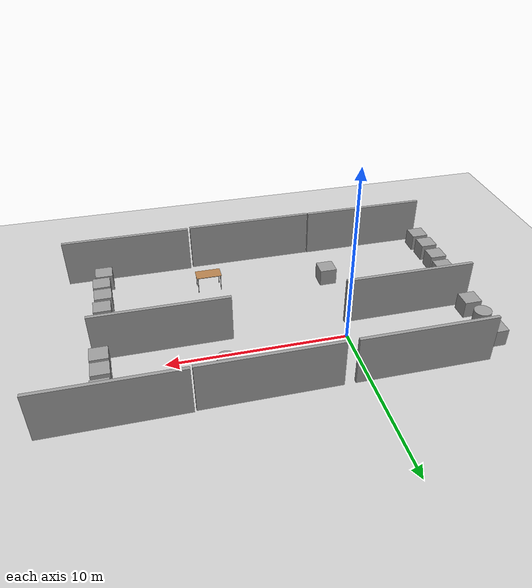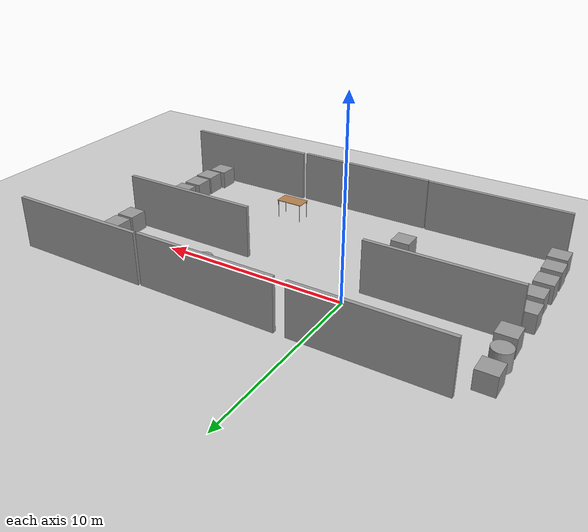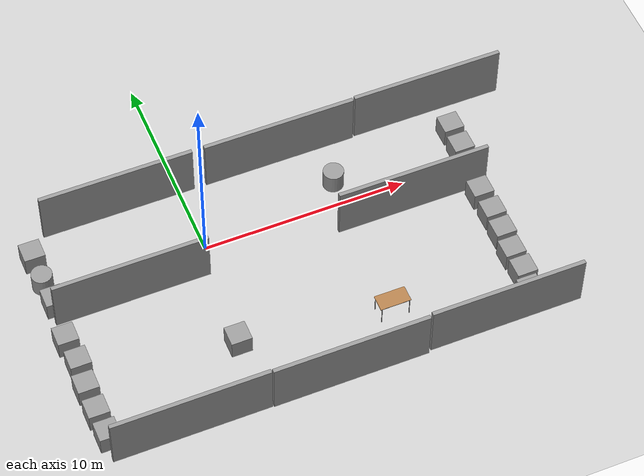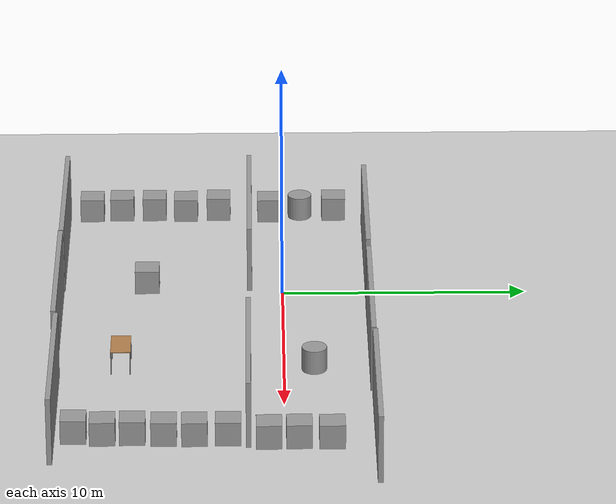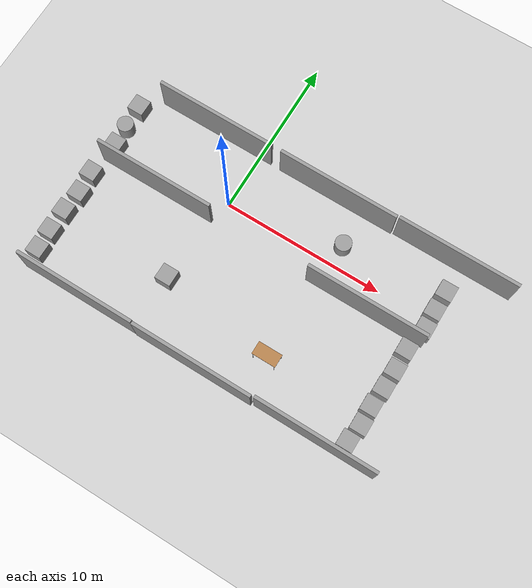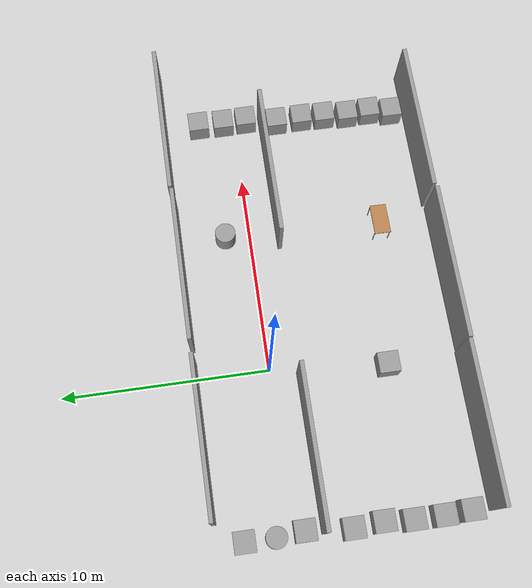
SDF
<sdf version="1.4">
 <world name="default">
  <light name="sun" type="directional">
   <pose>0 0 10 0 -0 0</pose>
   <diffuse>0.8 0.8 0.8 1</diffuse>
   <specular>0.2 0.2 0.2 1</specular>
   <attenuation>
    <range>1000</range>
    <constant>0.9</constant>
    <linear>0.01</linear>
    <quadratic>0.001</quadratic>
   </attenuation>
   <direction>-0.5 0.1 -0.9</direction>
  </light>
  <model name="ground_plane">
   <static>1</static>
   <link name="link">
    <collision name="collision">
     <geometry><plane><normal>0 0 1</normal><size>100 100</size></plane></geometry>
     <surface><friction><ode><mu>100</mu><mu2>50</mu2></ode></friction></surface>
    </collision>
    <visual name="visual">
     <cast_shadows>0</cast_shadows>
     <geometry><plane><normal>0 0 1</normal><size>100 100</size></plane></geometry>
     <material>
      <script><uri>file://media/materials/scripts/gazebo.material</uri><name>Gazebo/Grey</name></script>
     </material>
    </visual>
    <velocity_decay><linear>0</linear><angular>0</angular></velocity_decay>
   </link>
  </model>
  <physics type="ode">
   <max_step_size>0.001</max_step_size>
   <real_time_factor>1</real_time_factor>
   <real_time_update_rate>1000</real_time_update_rate>
   <gravity>0 0 -9.8</gravity>
  </physics>
  <scene><ambient>0.4 0.4 0.4 1</ambient><background>0.7 0.7 0.7 1</background><shadows>1</shadows></scene>
  <spherical_coordinates>
   <surface_model>EARTH_WGS84</surface_model>
   <latitude_deg>0</latitude_deg>
   <longitude_deg>0</longitude_deg>
   <elevation>0</elevation>
   <heading_deg>0</heading_deg>
  </spherical_coordinates>
  <model name="grey_wall">
   <static>1</static>
   <link name="link">
    <pose>0 0 1.4 0 -0 0</pose>
    <collision name="collision"><geometry><box><size>7.5 0.2 2.8</size></box></geometry></collision>
    <visual name="visual">
     <cast_shadows>0</cast_shadows>
     <geometry><box><size>7.5 0.2 2.8</size></box></geometry>
     <material>
      <script>
       <uri>model://grey_wall/materials/scripts</uri>
       <uri>model://grey_wall/materials/textures</uri>
       <name>vrc/grey_wall</name>
      </script>
     </material>
    </visual>
    <velocity_decay><linear>0</linear><angular>0</angular></velocity_decay>
   </link>
   <pose>-4.05607 -9.07947 0 0 -0 0</pose>
  </model>
  <model name="grey_wall_0">
   <static>1</static>
   <link name="link">
    <pose>0 0 1.4 0 -0 0</pose>
    <collision name="collision"><geometry><box><size>7.5 0.2 2.8</size></box></geometry></collision>
    <visual name="visual">
     <cast_shadows>0</cast_shadows>
     <geometry><box><size>7.5 0.2 2.8</size></box></geometry>
     <material>
      <script>
       <uri>model://grey_wall/materials/scripts</uri>
       <uri>model://grey_wall/materials/textures</uri>
       <name>vrc/grey_wall</name>
      </script>
     </material>
    </visual>
    <velocity_decay><linear>0</linear><angular>0</angular></velocity_decay>
   </link>
   <pose>3.49939 -9.11265 0 0 -0 0</pose>
  </model>
  <model name="grey_wall_1">
   <static>1</static>
   <link name="link">
    <pose>0 0 1.4 0 -0 0</pose>
    <collision name="collision"><geometry><box><size>7.5 0.2 2.8</size></box></geometry></collision>
    <visual name="visual">
     <cast_shadows>0</cast_shadows>
     <geometry><box><size>7.5 0.2 2.8</size></box></geometry>
     <material>
      <script>
       <uri>model://grey_wall/materials/scripts</uri>
       <uri>model://grey_wall/materials/textures</uri>
       <name>vrc/grey_wall</name>
      </script>
     </material>
    </visual>
    <velocity_decay><linear>0</linear><angular>0</angular></velocity_decay>
   </link>
   <pose>11.1393 -9.01333 0 0 -0 0</pose>
  </model>
  <model name="grey_wall_2">
   <static>1</static>
   <link name="link">
    <pose>0 0 1.4 0 -0 0</pose>
    <collision name="collision"><geometry><box><size>7.5 0.2 2.8</size></box></geometry></collision>
    <visual name="visual">
     <cast_shadows>0</cast_shadows>
     <geometry><box><size>7.5 0.2 2.8</size></box></geometry>
     <material>
      <script>
       <uri>model://grey_wall/materials/scripts</uri>
       <uri>model://grey_wall/materials/textures</uri>
       <name>vrc/grey_wall</name>
      </script>
     </material>
    </visual>
    <velocity_decay><linear>0</linear><angular>0</angular></velocity_decay>
   </link>
   <pose>5.13325 3.52179 0 0 -0 0</pose>
  </model>
  <model name="grey_wall_3">
   <static>1</static>
   <link name="link">
    <pose>0 0 1.4 0 -0 0</pose>
    <collision name="collision"><geometry><box><size>7.5 0.2 2.8</size></box></geometry></collision>
    <visual name="visual">
     <cast_shadows>0</cast_shadows>
     <geometry><box><size>7.5 0.2 2.8</size></box></geometry>
     <material>
      <script>
       <uri>model://grey_wall/materials/scripts</uri>
       <uri>model://grey_wall/materials/textures</uri>
       <name>vrc/grey_wall</name>
      </script>
     </material>
    </visual>
    <velocity_decay><linear>0</linear><angular>0</angular></velocity_decay>
   </link>
   <pose>-4.02559 -1.34749 0 0 -0 0</pose>
  </model>
  <model name="grey_wall_4">
   <static>1</static>
   <link name="link">
    <pose>0 0 1.4 0 -0 0</pose>
    <collision name="collision"><geometry><box><size>7.5 0.2 2.8</size></box></geometry></collision>
    <visual name="visual">
     <cast_shadows>0</cast_shadows>
     <geometry><box><size>7.5 0.2 2.8</size></box></geometry>
     <material>
      <script>
       <uri>model://grey_wall/materials/scripts</uri>
       <uri>model://grey_wall/materials/textures</uri>
       <name>vrc/grey_wall</name>
      </script>
     </material>
    </visual>
    <velocity_decay><linear>0</linear><angular>0</angular></velocity_decay>
   </link>
   <pose>12.7425 3.58141 0 0 -0 0</pose>
  </model>
  <model name="grey_wall_5">
   <static>1</static>
   <link name="link">
    <pose>0 0 1.4 0 -0 0</pose>
    <collision name="collision"><geometry><box><size>7.5 0.2 2.8</size></box></geometry></collision>
    <visual name="visual">
     <cast_shadows>0</cast_shadows>
     <geometry><box><size>7.5 0.2 2.8</size></box></geometry>
     <material>
      <script>
       <uri>model://grey_wall/materials/scripts</uri>
       <uri>model://grey_wall/materials/textures</uri>
       <name>vrc/grey_wall</name>
      </script>
     </material>
    </visual>
    <velocity_decay><linear>0</linear><angular>0</angular></velocity_decay>
   </link>
   <pose>-2.97207 3.52897 0 0 -0 0</pose>
  </model>
  <model name="table">
   <static>1</static>
   <link name="link">
    <collision name="surface">
     <pose>0 0 1 0 -0 0</pose>
     <geometry><box><size>1.5 0.8 0.03</size></box></geometry>
     <surface><friction><ode><mu>0.6</mu><mu2>0.6</mu2></ode></friction></surface>
    </collision>
    <visual name="visual1">
     <pose>0 0 1 0 -0 0</pose>
     <geometry><box><size>1.5 0.8 0.03</size></box></geometry>
     <material>
      <script><uri>file://media/materials/scripts/gazebo.material</uri><name>Gazebo/Wood</name></script>
     </material>
    </visual>
    <collision name="front_left_leg">
     <pose>0.68 0.38 0.5 0 -0 0</pose>
     <geometry><cylinder><radius>0.02</radius><length>1</length></cylinder></geometry>
    </collision>
    <visual name="front_left_leg">
     <pose>0.68 0.38 0.5 0 -0 0</pose>
     <geometry><cylinder><radius>0.02</radius><length>1</length></cylinder></geometry>
     <material>
      <script><uri>file://media/materials/scripts/gazebo.material</uri><name>Gazebo/Grey</name></script>
     </material>
    </visual>
    <collision name="front_right_leg">
     <pose>0.68 -0.38 0.5 0 -0 0</pose>
     <geometry><cylinder><radius>0.02</radius><length>1</length></cylinder></geometry>
    </collision>
    <visual name="front_right_leg">
     <pose>0.68 -0.38 0.5 0 -0 0</pose>
     <geometry><cylinder><radius>0.02</radius><length>1</length></cylinder></geometry>
     <material>
      <script><uri>file://media/materials/scripts/gazebo.material</uri><name>Gazebo/Grey</name></script>
     </material>
    </visual>
    <collision name="back_right_leg">
     <pose>-0.68 -0.38 0.5 0 -0 0</pose>
     <geometry><cylinder><radius>0.02</radius><length>1</length></cylinder></geometry>
    </collision>
    <visual name="back_right_leg">
     <pose>-0.68 -0.38 0.5 0 -0 0</pose>
     <geometry><cylinder><radius>0.02</radius><length>1</length></cylinder></geometry>
     <material>
      <script><uri>file://media/materials/scripts/gazebo.material</uri><name>Gazebo/Grey</name></script>
     </material>
    </visual>
    <collision name="back_left_leg">
     <pose>-0.68 0.38 0.5 0 -0 0</pose>
     <geometry><cylinder><radius>0.02</radius><length>1</length></cylinder></geometry>
    </collision>
    <visual name="back_left_leg">
     <pose>-0.68 0.38 0.5 0 -0 0</pose>
     <geometry><cylinder><radius>0.02</radius><length>1</length></cylinder></geometry>
     <material>
      <script><uri>file://media/materials/scripts/gazebo.material</uri><name>Gazebo/Grey</name></script>
     </material>
    </visual>
    <velocity_decay><linear>0</linear><angular>0</angular></velocity_decay>
   </link>
   <pose>6.62728 -6.48427 0 0 -0 0</pose>
  </model>
  <model name="grey_wall_7">
   <static>1</static>
   <link name="link">
    <pose>0 0 1.4 0 -0 0</pose>
    <collision name="collision"><geometry><box><size>7.5 0.2 2.8</size></box></geometry></collision>
    <visual name="visual">
     <cast_shadows>0</cast_shadows>
     <geometry><box><size>7.5 0.2 2.8</size></box></geometry>
     <material>
      <script>
       <uri>model://grey_wall/materials/scripts</uri>
       <uri>model://grey_wall/materials/textures</uri>
       <name>vrc/grey_wall</name>
      </script>
     </material>
    </visual>
    <velocity_decay><linear>0</linear><angular>0</angular></velocity_decay>
   </link>
   <pose>9.86149 -1.40663 0 0 -0 0</pose>
  </model>
  <model name="unit_box_1">
   <pose>-7.64982 -8.06263 0.5 -0 -0 -1.4e-05</pose>
   <link name="link">
    <inertial>
     <mass>1</mass>
     <inertia><ixx>1</ixx><ixy>0</ixy><ixz>0</ixz><iyy>1</iyy><iyz>0</iyz><izz>1</izz></inertia>
    </inertial>
    <collision name="collision"><geometry><box><size>1 1 1</size></box></geometry></collision>
    <visual name="visual">
     <geometry><box><size>1 1 1</size></box></geometry>
     <material>
      <script><uri>file://media/materials/scripts/gazebo.material</uri><name>Gazebo/Grey</name></script>
     </material>
    </visual>
    <velocity_decay><linear>0</linear><angular>0</angular></velocity_decay>
   </link>
   <static>0</static>
  </model>
  <model name="unit_cylinder_1">
   <pose>-7.64679 0.813667 0.499992 0 0 -7e-06</pose>
   <link name="link">
    <inertial>
     <mass>1</mass>
     <inertia><ixx>1</ixx><ixy>0</ixy><ixz>0</ixz><iyy>1</iyy><iyz>0</iyz><izz>1</izz></inertia>
    </inertial>
    <collision name="collision">
     <geometry><cylinder><radius>0.5</radius><length>1</length></cylinder></geometry>
    </collision>
    <visual name="visual">
     <geometry><cylinder><radius>0.5</radius><length>1</length></cylinder></geometry>
     <material>
      <script><uri>file://media/materials/scripts/gazebo.material</uri><name>Gazebo/Grey</name></script>
     </material>
    </visual>
    <velocity_decay><linear>0</linear><angular>0</angular></velocity_decay>
   </link>
   <static>0</static>
  </model>
  <model name="unit_box_2">
   <pose>-7.71185 -5.40127 0.5 -0 -0 -3e-06</pose>
   <link name="link">
    <inertial>
     <mass>1</mass>
     <inertia><ixx>1</ixx><ixy>0</ixy><ixz>0</ixz><iyy>1</iyy><iyz>0</iyz><izz>1</izz></inertia>
    </inertial>
    <collision name="collision"><geometry><box><size>1 1 1</size></box></geometry></collision>
    <visual name="visual">
     <geometry><box><size>1 1 1</size></box></geometry>
     <material>
      <script><uri>file://media/materials/scripts/gazebo.material</uri><name>Gazebo/Grey</name></script>
     </material>
    </visual>
    <velocity_decay><linear>0</linear><angular>0</angular></velocity_decay>
   </link>
   <static>0</static>
  </model>
  <model name="unit_box_3">
   <pose>-7.71073 -6.7881 0.5 -0 -0 -5e-06</pose>
   <link name="link">
    <inertial>
     <mass>1</mass>
     <inertia><ixx>1</ixx><ixy>0</ixy><ixz>0</ixz><iyy>1</iyy><iyz>0</iyz><izz>1</izz></inertia>
    </inertial>
    <collision name="collision"><geometry><box><size>1 1 1</size></box></geometry></collision>
    <visual name="visual">
     <geometry><box><size>1 1 1</size></box></geometry>
     <material>
      <script><uri>file://media/materials/scripts/gazebo.material</uri><name>Gazebo/Grey</name></script>
     </material>
    </visual>
    <velocity_decay><linear>0</linear><angular>0</angular></velocity_decay>
   </link>
   <static>0</static>
  </model>
  <model name="unit_box_5">
   <pose>-7.51832 -0.497278 0.5 -0 -0 -0.000597</pose>
   <link name="link">
    <inertial>
     <mass>1</mass>
     <inertia><ixx>1</ixx><ixy>0</ixy><ixz>0</ixz><iyy>1</iyy><iyz>0</iyz><izz>1</izz></inertia>
    </inertial>
    <collision name="collision"><geometry><box><size>1 1 1</size></box></geometry></collision>
    <visual name="visual">
     <geometry><box><size>1 1 1</size></box></geometry>
     <material>
      <script><uri>file://media/materials/scripts/gazebo.material</uri><name>Gazebo/Grey</name></script>
     </material>
    </visual>
    <velocity_decay><linear>0</linear><angular>0</angular></velocity_decay>
   </link>
   <static>0</static>
  </model>
  <model name="unit_box_6">
   <pose>-7.6012 -4.0573 0.5 0 0 -0.001287</pose>
   <link name="link">
    <inertial>
     <mass>1</mass>
     <inertia><ixx>1</ixx><ixy>0</ixy><ixz>0</ixz><iyy>1</iyy><iyz>0</iyz><izz>1</izz></inertia>
    </inertial>
    <collision name="collision"><geometry><box><size>1 1 1</size></box></geometry></collision>
    <visual name="visual">
     <geometry><box><size>1 1 1</size></box></geometry>
     <material>
      <script><uri>file://media/materials/scripts/gazebo.material</uri><name>Gazebo/Grey</name></script>
     </material>
    </visual>
    <velocity_decay><linear>0</linear><angular>0</angular></velocity_decay>
   </link>
   <static>0</static>
  </model>
  <model name="unit_box_8">
   <pose>-7.71128 -2.66059 0.5 -0 -0 -0.001209</pose>
   <link name="link">
    <inertial>
     <mass>1</mass>
     <inertia><ixx>1</ixx><ixy>0</ixy><ixz>0</ixz><iyy>1</iyy><iyz>0</iyz><izz>1</izz></inertia>
    </inertial>
    <collision name="collision"><geometry><box><size>1 1 1</size></box></geometry></collision>
    <visual name="visual">
     <geometry><box><size>1 1 1</size></box></geometry>
     <material>
      <script><uri>file://media/materials/scripts/gazebo.material</uri><name>Gazebo/Grey</name></script>
     </material>
    </visual>
    <velocity_decay><linear>0</linear><angular>0</angular></velocity_decay>
   </link>
   <static>0</static>
  </model>
  <model name="unit_box_9">
   <pose>12.7356 -8.16939 0.5 -0 -0 -3e-06</pose>
   <link name="link">
    <inertial>
     <mass>1</mass>
     <inertia><ixx>1</ixx><ixy>0</ixy><ixz>0</ixz><iyy>1</iyy><iyz>0</iyz><izz>1</izz></inertia>
    </inertial>
    <collision name="collision"><geometry><box><size>1 1 1</size></box></geometry></collision>
    <visual name="visual">
     <geometry><box><size>1 1 1</size></box></geometry>
     <material>
      <script><uri>file://media/materials/scripts/gazebo.material</uri><name>Gazebo/Grey</name></script>
     </material>
    </visual>
    <velocity_decay><linear>0</linear><angular>0</angular></velocity_decay>
   </link>
   <static>0</static>
  </model>
  <model name="unit_box_11">
   <pose>-7.63739 2.25219 0.5 -0 -0 -5e-06</pose>
   <link name="link">
    <inertial>
     <mass>1</mass>
     <inertia><ixx>1</ixx><ixy>0</ixy><ixz>0</ixz><iyy>1</iyy><iyz>0</iyz><izz>1</izz></inertia>
    </inertial>
    <collision name="collision"><geometry><box><size>1 1 1</size></box></geometry></collision>
    <visual name="visual">
     <geometry><box><size>1 1 1</size></box></geometry>
     <material>
      <script><uri>file://media/materials/scripts/gazebo.material</uri><name>Gazebo/Grey</name></script>
     </material>
    </visual>
    <velocity_decay><linear>0</linear><angular>0</angular></velocity_decay>
   </link>
   <static>0</static>
  </model>
  <model name="unit_box_14">
   <pose>13.2627 1.82023 0.5 0 -0 0.005696</pose>
   <link name="link">
    <inertial>
     <mass>1</mass>
     <inertia><ixx>1</ixx><ixy>0</ixy><ixz>0</ixz><iyy>1</iyy><iyz>0</iyz><izz>1</izz></inertia>
    </inertial>
    <collision name="collision"><geometry><box><size>1 1 1</size></box></geometry></collision>
    <visual name="visual">
     <geometry><box><size>1 1 1</size></box></geometry>
     <material>
      <script><uri>file://media/materials/scripts/gazebo.material</uri><name>Gazebo/Grey</name></script>
     </material>
    </visual>
    <velocity_decay><linear>0</linear><angular>0</angular></velocity_decay>
   </link>
   <static>0</static>
  </model>
  <model name="unit_box_16">
   <pose>12.9657 -4.67896 0.5 0 -0 0.005492</pose>
   <link name="link">
    <inertial>
     <mass>1</mass>
     <inertia><ixx>1</ixx><ixy>0</ixy><ixz>0</ixz><iyy>1</iyy><iyz>0</iyz><izz>1</izz></inertia>
    </inertial>
    <collision name="collision"><geometry><box><size>1 1 1</size></box></geometry></collision>
    <visual name="visual">
     <geometry><box><size>1 1 1</size></box></geometry>
     <material>
      <script><uri>file://media/materials/scripts/gazebo.material</uri><name>Gazebo/Grey</name></script>
     </material>
    </visual>
    <velocity_decay><linear>0</linear><angular>0</angular></velocity_decay>
   </link>
   <static>0</static>
  </model>
  <model name="unit_box_18">
   <pose>12.999 -3.49494 0.5 0 -0 0.006476</pose>
   <link name="link">
    <inertial>
     <mass>1</mass>
     <inertia><ixx>1</ixx><ixy>0</ixy><ixz>0</ixz><iyy>1</iyy><iyz>0</iyz><izz>1</izz></inertia>
    </inertial>
    <collision name="collision"><geometry><box><size>1 1 1</size></box></geometry></collision>
    <visual name="visual">
     <geometry><box><size>1 1 1</size></box></geometry>
     <material>
      <script><uri>file://media/materials/scripts/gazebo.material</uri><name>Gazebo/Grey</name></script>
     </material>
    </visual>
    <velocity_decay><linear>0</linear><angular>0</angular></velocity_decay>
   </link>
   <static>0</static>
  </model>
  <model name="unit_box_19">
   <pose>12.9085 -7.04654 0.5 0 -0 0.00613</pose>
   <link name="link">
    <inertial>
     <mass>1</mass>
     <inertia><ixx>1</ixx><ixy>0</ixy><ixz>0</ixz><iyy>1</iyy><iyz>0</iyz><izz>1</izz></inertia>
    </inertial>
    <collision name="collision"><geometry><box><size>1 1 1</size></box></geometry></collision>
    <visual name="visual">
     <geometry><box><size>1 1 1</size></box></geometry>
     <material>
      <script><uri>file://media/materials/scripts/gazebo.material</uri><name>Gazebo/Grey</name></script>
     </material>
    </visual>
    <velocity_decay><linear>0</linear><angular>0</angular></velocity_decay>
   </link>
   <static>0</static>
  </model>
  <model name="unit_box_20">
   <pose>13.2326 0.549843 0.5 0 -0 0.006026</pose>
   <link name="link">
    <inertial>
     <mass>1</mass>
     <inertia><ixx>1</ixx><ixy>0</ixy><ixz>0</ixz><iyy>1</iyy><iyz>0</iyz><izz>1</izz></inertia>
    </inertial>
    <collision name="collision"><geometry><box><size>1 1 1</size></box></geometry></collision>
    <visual name="visual">
     <geometry><box><size>1 1 1</size></box></geometry>
     <material>
      <script><uri>file://media/materials/scripts/gazebo.material</uri><name>Gazebo/Grey</name></script>
     </material>
    </visual>
    <velocity_decay><linear>0</linear><angular>0</angular></velocity_decay>
   </link>
   <static>0</static>
  </model>
  <model name="unit_box_21">
   <pose>12.8733 -5.8895 0.5 0 -0 0.006133</pose>
   <link name="link">
    <inertial>
     <mass>1</mass>
     <inertia><ixx>1</ixx><ixy>0</ixy><ixz>0</ixz><iyy>1</iyy><iyz>0</iyz><izz>1</izz></inertia>
    </inertial>
    <collision name="collision"><geometry><box><size>1 1 1</size></box></geometry></collision>
    <visual name="visual">
     <geometry><box><size>1 1 1</size></box></geometry>
     <material>
      <script><uri>file://media/materials/scripts/gazebo.material</uri><name>Gazebo/Grey</name></script>
     </material>
    </visual>
    <velocity_decay><linear>0</linear><angular>0</angular></velocity_decay>
   </link>
   <static>0</static>
  </model>
  <model name="unit_box_22">
   <pose>13.2595 -0.621534 0.5 0 -0 0.006026</pose>
   <link name="link">
    <inertial>
     <mass>1</mass>
     <inertia><ixx>1</ixx><ixy>0</ixy><ixz>0</ixz><iyy>1</iyy><iyz>0</iyz><izz>1</izz></inertia>
    </inertial>
    <collision name="collision"><geometry><box><size>1 1 1</size></box></geometry></collision>
    <visual name="visual">
     <geometry><box><size>1 1 1</size></box></geometry>
     <material>
      <script><uri>file://media/materials/scripts/gazebo.material</uri><name>Gazebo/Grey</name></script>
     </material>
    </visual>
    <velocity_decay><linear>0</linear><angular>0</angular></velocity_decay>
   </link>
   <static>0</static>
  </model>
  <model name="unit_box_23">
   <pose>12.9695 -2.19934 0.5 0 -0 0</pose>
   <link name="link">
    <inertial>
     <mass>1</mass>
     <inertia><ixx>1</ixx><ixy>0</ixy><ixz>0</ixz><iyy>1</iyy><iyz>0</iyz><izz>1</izz></inertia>
    </inertial>
    <collision name="collision"><geometry><box><size>1 1 1</size></box></geometry></collision>
    <visual name="visual">
     <geometry><box><size>1 1 1</size></box></geometry>
     <material>
      <script><uri>file://media/materials/scripts/gazebo.material</uri><name>Gazebo/Grey</name></script>
     </material>
    </visual>
    <velocity_decay><linear>0</linear><angular>0</angular></velocity_decay>
   </link>
   <static>0</static>
  </model>
  <model name="unit_cylinder_2">
   <pose>6.95333 1.22078 0.499998 -0 -0 -2.4e-05</pose>
   <link name="link">
    <inertial>
     <mass>1</mass>
     <inertia><ixx>1</ixx><ixy>0</ixy><ixz>0</ixz><iyy>1</iyy><iyz>0</iyz><izz>1</izz></inertia>
    </inertial>
    <collision name="collision">
     <geometry><cylinder><radius>0.5</radius><length>1</length></cylinder></geometry>
    </collision>
    <visual name="visual">
     <geometry><cylinder><radius>0.5</radius><length>1</length></cylinder></geometry>
     <material>
      <script><uri>file://media/materials/scripts/gazebo.material</uri><name>Gazebo/Grey</name></script>
     </material>
    </visual>
    <velocity_decay><linear>0</linear><angular>0</angular></velocity_decay>
   </link>
   <static>0</static>
  </model>
  <model name="unit_box_24">
   <pose>-0.530587 -5.57487 0.5 0 -0 -5.6e-05</pose>
   <link name="link">
    <inertial>
     <mass>1</mass>
     <inertia><ixx>1</ixx><ixy>0</ixy><ixz>0</ixz><iyy>1</iyy><iyz>0</iyz><izz>1</izz></inertia>
    </inertial>
    <collision name="collision"><geometry><box><size>1 1 1</size></box></geometry></collision>
    <visual name="visual">
     <geometry><box><size>1 1 1</size></box></geometry>
     <material>
      <script><uri>file://media/materials/scripts/gazebo.material</uri><name>Gazebo/Grey</name></script>
     </material>
    </visual>
    <velocity_decay><linear>0</linear><angular>0</angular></velocity_decay>
   </link>
   <static>0</static>
  </model>
 </world>
</sdf>
